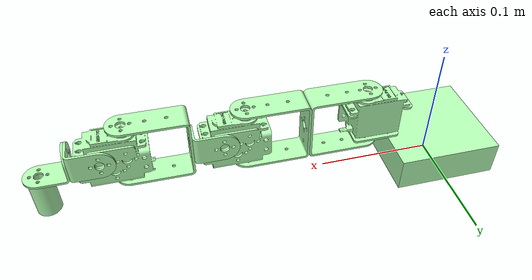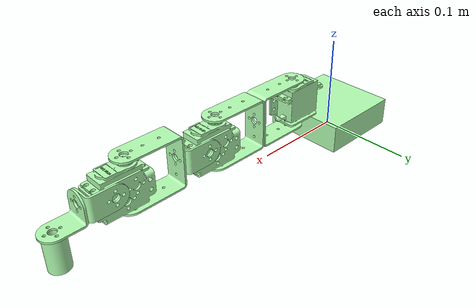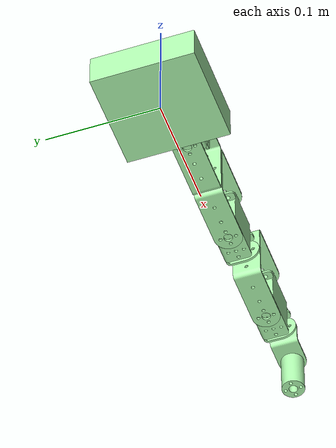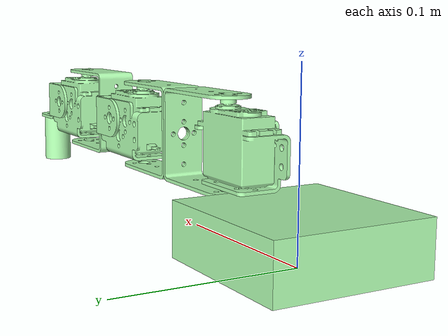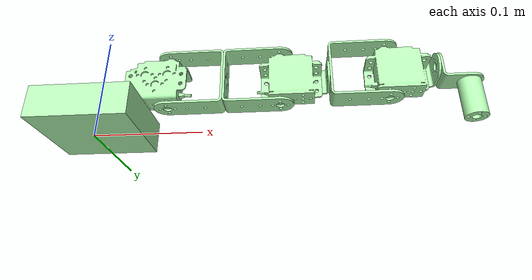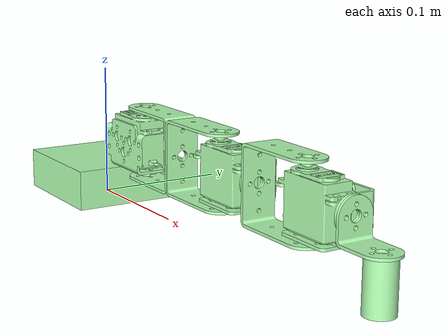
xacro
<?xml version="1.0" ?>
<robot name="il_three_dof_servo_arm_urdf_compatible" xmlns:xacro="http://www.ros.org/wiki/xacro">

<xacro:include filename="$(find il_three_dof_servo_arm_urdf_compatible_description)/urdf/materials.xacro" />
<xacro:include filename="$(find il_three_dof_servo_arm_urdf_compatible_description)/urdf/il_three_dof_servo_arm_urdf_compatible.trans" />
<xacro:include filename="$(find il_three_dof_servo_arm_urdf_compatible_description)/urdf/il_three_dof_servo_arm_urdf_compatible.gazebo" />
<link name="base_link">
  <inertial>
    <origin xyz="0.0 0.0 0.015" rpy="0 0 0"/>
    <mass value="1.907549999999999"/>
    <inertia ixx="0.001431" iyy="0.001431" izz="0.002575" ixy="0.0" iyz="0.0" ixz="0.0"/>
  </inertial>
  <visual>
    <origin xyz="0 0 0" rpy="0 0 0"/>
    <geometry>
      <mesh filename="package://il_three_dof_servo_arm_urdf_compatible_description/meshes/base_link.stl" scale="0.001 0.001 0.001"/>
    </geometry>
    <material name="silver"/>
  </visual>
  <collision>
    <origin xyz="0 0 0" rpy="0 0 0"/>
    <geometry>
      <mesh filename="package://il_three_dof_servo_arm_urdf_compatible_description/meshes/base_link.stl" scale="0.001 0.001 0.001"/>
    </geometry>
  </collision>
</link>

<link name="link_1_1_1">
  <inertial>
    <origin xyz="0.010722263946288085 -0.0010298469529679576 0.02155785221673978" rpy="0 0 0"/>
    <mass value="0.10446533796903502"/>
    <inertia ixx="1.9e-05" iyy="3.1e-05" izz="2.1e-05" ixy="-0.0" iyz="-0.0" ixz="-0.0"/>
  </inertial>
  <visual>
    <origin xyz="-0.045 -0.0 -0.03" rpy="0 0 0"/>
    <geometry>
      <mesh filename="package://il_three_dof_servo_arm_urdf_compatible_description/meshes/link_1_1_1.stl" scale="0.001 0.001 0.001"/>
    </geometry>
    <material name="silver"/>
  </visual>
  <collision>
    <origin xyz="-0.045 -0.0 -0.03" rpy="0 0 0"/>
    <geometry>
      <mesh filename="package://il_three_dof_servo_arm_urdf_compatible_description/meshes/link_1_1_1.stl" scale="0.001 0.001 0.001"/>
    </geometry>
  </collision>
</link>

<link name="link_1_2_1">
  <inertial>
    <origin xyz="0.03039981873219752 -1.3654025610418787e-14 -0.02549999999998632" rpy="0 0 0"/>
    <mass value="0.022671389167279683"/>
    <inertia ixx="1.4e-05" iyy="2.2e-05" izz="1e-05" ixy="-0.0" iyz="0.0" ixz="-0.0"/>
  </inertial>
  <visual>
    <origin xyz="-0.06575 -0.0 -0.0776" rpy="0 0 0"/>
    <geometry>
      <mesh filename="package://il_three_dof_servo_arm_urdf_compatible_description/meshes/link_1_2_1.stl" scale="0.001 0.001 0.001"/>
    </geometry>
    <material name="silver"/>
  </visual>
  <collision>
    <origin xyz="-0.06575 -0.0 -0.0776" rpy="0 0 0"/>
    <geometry>
      <mesh filename="package://il_three_dof_servo_arm_urdf_compatible_description/meshes/link_1_2_1.stl" scale="0.001 0.001 0.001"/>
    </geometry>
  </collision>
</link>

<link name="link_1_3_1">
  <inertial>
    <origin xyz="0.022100181267802443 -1.3645906135543732e-14 -1.3704315460216776e-14" rpy="0 0 0"/>
    <mass value="0.022671389167279683"/>
    <inertia ixx="1.4e-05" iyy="2.2e-05" izz="1e-05" ixy="0.0" iyz="-0.0" ixz="-0.0"/>
  </inertial>
  <visual>
    <origin xyz="-0.11825 -0.0 -0.0521" rpy="0 0 0"/>
    <geometry>
      <mesh filename="package://il_three_dof_servo_arm_urdf_compatible_description/meshes/link_1_3_1.stl" scale="0.001 0.001 0.001"/>
    </geometry>
    <material name="silver"/>
  </visual>
  <collision>
    <origin xyz="-0.11825 -0.0 -0.0521" rpy="0 0 0"/>
    <geometry>
      <mesh filename="package://il_three_dof_servo_arm_urdf_compatible_description/meshes/link_1_3_1.stl" scale="0.001 0.001 0.001"/>
    </geometry>
  </collision>
</link>

<link name="link_2_1_1">
  <inertial>
    <origin xyz="0.010027736053711822 0.001029846952968002 -0.02604214778326025" rpy="0 0 0"/>
    <mass value="0.10446533796903502"/>
    <inertia ixx="1.9e-05" iyy="3.1e-05" izz="2.1e-05" ixy="-0.0" iyz="0.0" ixz="0.0"/>
  </inertial>
  <visual>
    <origin xyz="-0.17075 -0.0 -0.0776" rpy="0 0 0"/>
    <geometry>
      <mesh filename="package://il_three_dof_servo_arm_urdf_compatible_description/meshes/link_2_1_1.stl" scale="0.001 0.001 0.001"/>
    </geometry>
    <material name="silver"/>
  </visual>
  <collision>
    <origin xyz="-0.17075 -0.0 -0.0776" rpy="0 0 0"/>
    <geometry>
      <mesh filename="package://il_three_dof_servo_arm_urdf_compatible_description/meshes/link_2_1_1.stl" scale="0.001 0.001 0.001"/>
    </geometry>
  </collision>
</link>

<link name="link_2_2_1">
  <inertial>
    <origin xyz="0.014291543311493432 -0.004352329737747492 -1.9761969838327786e-14" rpy="0 0 0"/>
    <mass value="0.007218982086139781"/>
    <inertia ixx="1e-06" iyy="1e-06" izz="1e-06" ixy="0.0" iyz="0.0" ixz="-0.0"/>
  </inertial>
  <visual>
    <origin xyz="-0.1915 -0.0135 -0.0545" rpy="0 0 0"/>
    <geometry>
      <mesh filename="package://il_three_dof_servo_arm_urdf_compatible_description/meshes/link_2_2_1.stl" scale="0.001 0.001 0.001"/>
    </geometry>
    <material name="silver"/>
  </visual>
  <collision>
    <origin xyz="-0.1915 -0.0135 -0.0545" rpy="0 0 0"/>
    <geometry>
      <mesh filename="package://il_three_dof_servo_arm_urdf_compatible_description/meshes/link_2_2_1.stl" scale="0.001 0.001 0.001"/>
    </geometry>
  </collision>
</link>

<link name="link_2_3_1">
  <inertial>
    <origin xyz="0.02210018126780225 -1.3647720106813033e-14 -1.3739009929736312e-14" rpy="0 0 0"/>
    <mass value="0.022671389167279683"/>
    <inertia ixx="1.4e-05" iyy="2.2e-05" izz="1e-05" ixy="0.0" iyz="0.0" ixz="-0.0"/>
  </inertial>
  <visual>
    <origin xyz="-0.2165 0.001 -0.0545" rpy="0 0 0"/>
    <geometry>
      <mesh filename="package://il_three_dof_servo_arm_urdf_compatible_description/meshes/link_2_3_1.stl" scale="0.001 0.001 0.001"/>
    </geometry>
    <material name="silver"/>
  </visual>
  <collision>
    <origin xyz="-0.2165 0.001 -0.0545" rpy="0 0 0"/>
    <geometry>
      <mesh filename="package://il_three_dof_servo_arm_urdf_compatible_description/meshes/link_2_3_1.stl" scale="0.001 0.001 0.001"/>
    </geometry>
  </collision>
</link>

<link name="link_3_1_1">
  <inertial>
    <origin xyz="0.010027736053711711 0.0010298469529679821 -0.026042147783260285" rpy="0 0 0"/>
    <mass value="0.10446533796903502"/>
    <inertia ixx="1.9e-05" iyy="3.1e-05" izz="2.1e-05" ixy="-0.0" iyz="0.0" ixz="0.0"/>
  </inertial>
  <visual>
    <origin xyz="-0.269 0.001 -0.08" rpy="0 0 0"/>
    <geometry>
      <mesh filename="package://il_three_dof_servo_arm_urdf_compatible_description/meshes/link_3_1_1.stl" scale="0.001 0.001 0.001"/>
    </geometry>
    <material name="silver"/>
  </visual>
  <collision>
    <origin xyz="-0.269 0.001 -0.08" rpy="0 0 0"/>
    <geometry>
      <mesh filename="package://il_three_dof_servo_arm_urdf_compatible_description/meshes/link_3_1_1.stl" scale="0.001 0.001 0.001"/>
    </geometry>
  </collision>
</link>

<link name="link_3_2_1">
  <inertial>
    <origin xyz="0.014291543311493349 -0.004352329737747514 -1.9782786520039508e-14" rpy="0 0 0"/>
    <mass value="0.007218982086139781"/>
    <inertia ixx="1e-06" iyy="1e-06" izz="1e-06" ixy="0.0" iyz="0.0" ixz="-0.0"/>
  </inertial>
  <visual>
    <origin xyz="-0.28975 -0.0125 -0.0569" rpy="0 0 0"/>
    <geometry>
      <mesh filename="package://il_three_dof_servo_arm_urdf_compatible_description/meshes/link_3_2_1.stl" scale="0.001 0.001 0.001"/>
    </geometry>
    <material name="silver"/>
  </visual>
  <collision>
    <origin xyz="-0.28975 -0.0125 -0.0569" rpy="0 0 0"/>
    <geometry>
      <mesh filename="package://il_three_dof_servo_arm_urdf_compatible_description/meshes/link_3_2_1.stl" scale="0.001 0.001 0.001"/>
    </geometry>
  </collision>
</link>

<link name="link_4_1_1">
  <inertial>
    <origin xyz="0.01070845668850634 1.976023511485181e-14 -0.010147670262252488" rpy="0 0 0"/>
    <mass value="0.007218982086139781"/>
    <inertia ixx="1e-06" iyy="1e-06" izz="1e-06" ixy="-0.0" iyz="0.0" ixz="0.0"/>
  </inertial>
  <visual>
    <origin xyz="-0.31475 0.002 -0.0569" rpy="0 0 0"/>
    <geometry>
      <mesh filename="package://il_three_dof_servo_arm_urdf_compatible_description/meshes/link_4_1_1.stl" scale="0.001 0.001 0.001"/>
    </geometry>
    <material name="silver"/>
  </visual>
  <collision>
    <origin xyz="-0.31475 0.002 -0.0569" rpy="0 0 0"/>
    <geometry>
      <mesh filename="package://il_three_dof_servo_arm_urdf_compatible_description/meshes/link_4_1_1.stl" scale="0.001 0.001 0.001"/>
    </geometry>
  </collision>
</link>

<link name="ee_1">
  <inertial>
    <origin xyz="1.2045919817182948e-13 9.540979117872439e-18 -0.017499999999999925" rpy="0 0 0"/>
    <mass value="0.06824310014657918"/>
    <inertia ixx="9e-06" iyy="9e-06" izz="4e-06" ixy="0.0" iyz="0.0" ixz="-0.0"/>
  </inertial>
  <visual>
    <origin xyz="-0.33975 0.002 -0.0404" rpy="0 0 0"/>
    <geometry>
      <mesh filename="package://il_three_dof_servo_arm_urdf_compatible_description/meshes/ee_1.stl" scale="0.001 0.001 0.001"/>
    </geometry>
    <material name="silver"/>
  </visual>
  <collision>
    <origin xyz="-0.33975 0.002 -0.0404" rpy="0 0 0"/>
    <geometry>
      <mesh filename="package://il_three_dof_servo_arm_urdf_compatible_description/meshes/ee_1.stl" scale="0.001 0.001 0.001"/>
    </geometry>
  </collision>
</link>

<joint name="Rigid_46" type="fixed">
  <origin xyz="0.045 0.0 0.03" rpy="0 0 0"/>
  <parent link="base_link"/>
  <child link="link_1_1_1"/>
</joint>

<joint name="joint_1" type="revolute">
  <origin xyz="0.02075 0.0 0.0476" rpy="0 0 0"/>
  <limit effort="1000.0" lower="-1.57" upper="1.57" velocity="1.0" />
  <parent link="link_1_1_1"/>
  <child link="link_1_2_1"/>
  <axis xyz="-0.0 0.0 -1.0"/>
</joint>

<joint name="Rigid_48" type="fixed">
  <origin xyz="0.0525 0.0 -0.0255" rpy="0 0 0"/>
  <parent link="link_1_2_1"/>
  <child link="link_1_3_1"/>
</joint>

<joint name="joint_2" type="revolute">
  <origin xyz="0.0525 0.0 0.0255" rpy="0 0 0"/>
  <limit effort="1000.0" lower="-1.57" upper="1.57" velocity="1.0" />
  <parent link="link_1_3_1"/>
  <child link="link_2_1_1"/>
  <axis xyz="-0.0 0.0 1.0"/>
</joint>

<joint name="Rigid_50" type="fixed">
  <origin xyz="0.02075 0.0135 -0.0231" rpy="0 0 0"/>
  <parent link="link_2_1_1"/>
  <child link="link_2_2_1"/>
</joint>

<joint name="Rigid_51" type="fixed">
  <origin xyz="0.025 -0.0145 0.0" rpy="0 0 0"/>
  <parent link="link_2_2_1"/>
  <child link="link_2_3_1"/>
</joint>

<joint name="joint_3" type="revolute">
  <origin xyz="0.0525 0.0 0.0255" rpy="0 0 0"/>
  <limit effort="1000.0" lower="-1.57" upper="1.57" velocity="1.0" />
  <parent link="link_2_3_1"/>
  <child link="link_3_1_1"/>
  <axis xyz="-0.0 -0.0 1.0"/>
</joint>

<joint name="Rigid_53" type="fixed">
  <origin xyz="0.02075 0.0135 -0.0231" rpy="0 0 0"/>
  <parent link="link_3_1_1"/>
  <child link="link_3_2_1"/>
</joint>

<joint name="Rigid_55" type="fixed">
  <origin xyz="0.025 -0.0145 0.0" rpy="0 0 0"/>
  <parent link="link_3_2_1"/>
  <child link="link_4_1_1"/>
</joint>

<joint name="Rigid_56" type="fixed">
  <origin xyz="0.025 0.0 -0.0165" rpy="0 0 0"/>
  <parent link="link_4_1_1"/>
  <child link="ee_1"/>
</joint>

</robot>

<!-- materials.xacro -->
<robot name="il_three_dof_servo_arm_urdf_compatible" xmlns:xacro="http://www.ros.org/wiki/xacro" >

<material name="silver">
  <color rgba="0.700 1.00 0.700 1.000"/>
</material>

</robot>

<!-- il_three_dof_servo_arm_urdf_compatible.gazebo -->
<robot name="il_three_dof_servo_arm_urdf_compatible" xmlns:xacro="http://www.ros.org/wiki/xacro" >

<xacro:property name="body_color" value="Gazebo/Silver" />

<gazebo>
  <plugin name="control" filename="libgazebo_ros_control.so"/>
</gazebo>
<gazebo reference="base_link">
  <material>${body_color}</material>
  <mu1>0.2</mu1>
  <mu2>0.2</mu2>
  <selfCollide>true</selfCollide>
  <gravity>true</gravity>
</gazebo>

<gazebo reference="link_1_1_1">
  <material>${body_color}</material>
  <mu1>0.2</mu1>
  <mu2>0.2</mu2>
  <selfCollide>true</selfCollide>
</gazebo>

<gazebo reference="link_1_2_1">
  <material>${body_color}</material>
  <mu1>0.2</mu1>
  <mu2>0.2</mu2>
  <selfCollide>true</selfCollide>
</gazebo>

<gazebo reference="link_1_3_1">
  <material>${body_color}</material>
  <mu1>0.2</mu1>
  <mu2>0.2</mu2>
  <selfCollide>true</selfCollide>
</gazebo>

<gazebo reference="link_2_1_1">
  <material>${body_color}</material>
  <mu1>0.2</mu1>
  <mu2>0.2</mu2>
  <selfCollide>true</selfCollide>
</gazebo>

<gazebo reference="link_2_2_1">
  <material>${body_color}</material>
  <mu1>0.2</mu1>
  <mu2>0.2</mu2>
  <selfCollide>true</selfCollide>
</gazebo>

<gazebo reference="link_2_3_1">
  <material>${body_color}</material>
  <mu1>0.2</mu1>
  <mu2>0.2</mu2>
  <selfCollide>true</selfCollide>
</gazebo>

<gazebo reference="link_3_1_1">
  <material>${body_color}</material>
  <mu1>0.2</mu1>
  <mu2>0.2</mu2>
  <selfCollide>true</selfCollide>
</gazebo>

<gazebo reference="link_3_2_1">
  <material>${body_color}</material>
  <mu1>0.2</mu1>
  <mu2>0.2</mu2>
  <selfCollide>true</selfCollide>
</gazebo>

<gazebo reference="link_4_1_1">
  <material>${body_color}</material>
  <mu1>0.2</mu1>
  <mu2>0.2</mu2>
  <selfCollide>true</selfCollide>
</gazebo>

<gazebo reference="ee_1">
  <material>${body_color}</material>
  <mu1>0.2</mu1>
  <mu2>0.2</mu2>
  <selfCollide>true</selfCollide>
</gazebo>

</robot>
